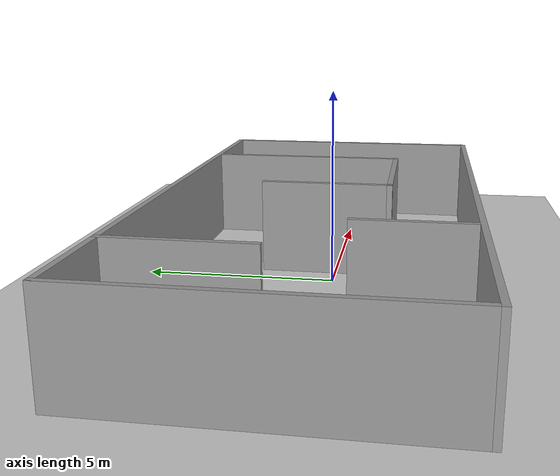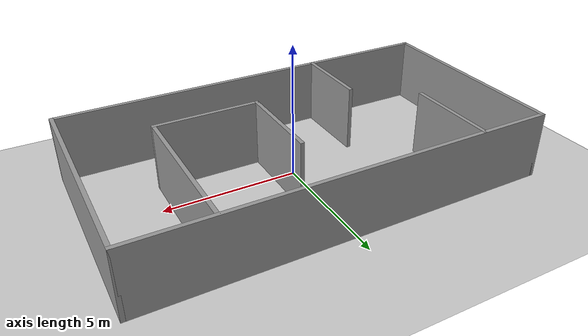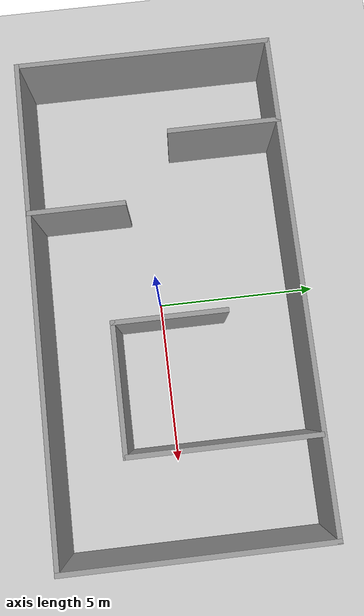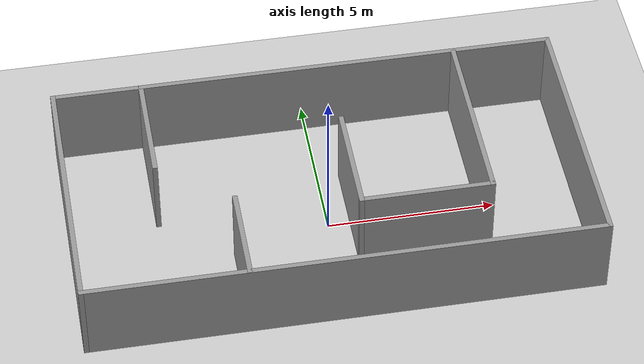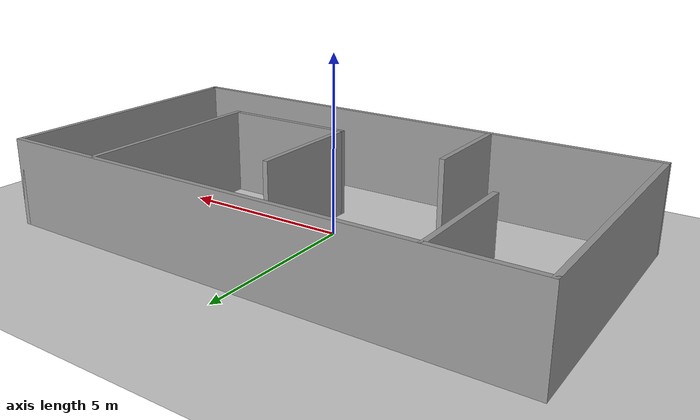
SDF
<sdf version="1.7">
 <world name="default">
  <light name="sun" type="directional">
   <pose>0 0 10 0 -0 0</pose>
   <diffuse>0.8 0.8 0.8 1</diffuse>
   <specular>0.2 0.2 0.2 1</specular>
   <attenuation>
    <range>1000</range>
    <constant>0.9</constant>
    <linear>0.01</linear>
    <quadratic>0.001</quadratic>
   </attenuation>
   <direction>-0.5 0.1 -0.9</direction>
   <spot><inner_angle>0</inner_angle><outer_angle>0</outer_angle><falloff>0</falloff></spot>
  </light>
  <model name="ground_plane">
   <static>1</static>
   <link name="link">
    <collision name="collision">
     <geometry><plane><normal>0 0 1</normal><size>100 100</size></plane></geometry>
     <surface>
      <contact><collide_bitmask>65535</collide_bitmask></contact>
      <friction><ode><mu>100</mu><mu2>50</mu2></ode></friction>
     </surface>
    </collision>
    <visual name="visual">
     <cast_shadows>0</cast_shadows>
     <geometry><plane><normal>0 0 1</normal><size>100 100</size></plane></geometry>
     <material>
      <script><uri>file://media/materials/scripts/gazebo.material</uri><name>Gazebo/Grey</name></script>
     </material>
    </visual>
   </link>
  </model>
  <gravity>0 0 -9.8</gravity>
  <magnetic_field>6e-06 2.3e-05 -4.2e-05</magnetic_field>
  <atmosphere type="adiabatic"/>
  <physics type="ode">
   <max_step_size>0.001</max_step_size>
   <real_time_factor>1</real_time_factor>
   <real_time_update_rate>1000</real_time_update_rate>
  </physics>
  <scene><ambient>0.4 0.4 0.4 1</ambient><background>0.7 0.7 0.7 1</background><shadows>1</shadows></scene>
  <audio><device>default</device></audio>
  <spherical_coordinates>
   <surface_model>EARTH_WGS84</surface_model>
   <latitude_deg>0</latitude_deg>
   <longitude_deg>0</longitude_deg>
   <elevation>0</elevation>
   <heading_deg>0</heading_deg>
  </spherical_coordinates>
  <model name="map3">
   <pose>-0.048254 0.315511 0 0 -0 0</pose>
   <link name="Wall_10">
    <collision name="Wall_10_Collision">
     <geometry><box><size>3.5 0.15 2.5</size></box></geometry>
     <pose>0 0 1.25 0 -0 0</pose>
    </collision>
    <visual name="Wall_10_Visual">
     <pose>0 0 1.25 0 -0 0</pose>
     <geometry><box><size>3.5 0.15 2.5</size></box></geometry>
     <material>
      <script><uri>file://media/materials/scripts/gazebo.material</uri><name>Gazebo/Grey</name></script>
      <ambient>1 1 1 1</ambient>
     </material>
     <meta><layer>0</layer></meta>
    </visual>
    <pose>-4.91243 2.24497 0 0 -0 -1.5708</pose>
   </link>
   <link name="Wall_12">
    <collision name="Wall_12_Collision">
     <geometry><box><size>3 0.15 2.5</size></box></geometry>
     <pose>0 0 1.25 0 -0 0</pose>
    </collision>
    <visual name="Wall_12_Visual">
     <pose>0 0 1.25 0 -0 0</pose>
     <geometry><box><size>3 0.15 2.5</size></box></geometry>
     <material>
      <script><uri>file://media/materials/scripts/gazebo.material</uri><name>Gazebo/Grey</name></script>
      <ambient>1 1 1 1</ambient>
     </material>
     <meta><layer>0</layer></meta>
    </visual>
    <pose>-2.79842 -2.48754 0 0 -0 1.5708</pose>
   </link>
   <link name="Wall_14">
    <collision name="Wall_14_Collision">
     <geometry><box><size>5.75 0.15 2.5</size></box></geometry>
     <pose>0 0 1.25 0 -0 0</pose>
    </collision>
    <visual name="Wall_14_Visual">
     <pose>0 0 1.25 0 -0 0</pose>
     <geometry><box><size>5.75 0.15 2.5</size></box></geometry>
     <material>
      <script><uri>file://media/materials/scripts/gazebo.material</uri><name>Gazebo/Grey</name></script>
      <ambient>1 1 1 1</ambient>
     </material>
     <meta><layer>0</layer></meta>
    </visual>
    <pose>4.62345 1.05913 0 0 -0 -1.5708</pose>
   </link>
   <link name="Wall_15">
    <collision name="Wall_15_Collision">
     <geometry><box><size>4 0.15 2.5</size></box></geometry>
     <pose>0 0 1.25 0 -0 0</pose>
    </collision>
    <visual name="Wall_15_Visual">
     <pose>0 0 1.25 0 -0 0</pose>
     <geometry><box><size>4 0.15 2.5</size></box></geometry>
     <material>
      <script><uri>file://media/materials/scripts/gazebo.material</uri><name>Gazebo/Grey</name></script>
      <ambient>1 1 1 1</ambient>
     </material>
     <meta><layer>0</layer></meta>
    </visual>
    <pose>2.69845 -1.74087 0 0 -0 3.14159</pose>
   </link>
   <link name="Wall_16">
    <collision name="Wall_16_Collision">
     <geometry><box><size>3.5 0.15 2.5</size></box></geometry>
     <pose>0 0 1.25 0 -0 0</pose>
    </collision>
    <visual name="Wall_16_Visual">
     <pose>0 0 1.25 0 -0 0</pose>
     <geometry><box><size>3.5 0.15 2.5</size></box></geometry>
     <material>
      <script><uri>file://media/materials/scripts/gazebo.material</uri><name>Gazebo/Grey</name></script>
      <ambient>1 1 1 1</ambient>
     </material>
     <meta><layer>0</layer></meta>
    </visual>
    <pose>0.773453 -0.065866 0 0 -0 1.5708</pose>
   </link>
   <link name="Wall_5">
    <collision name="Wall_5_Collision">
     <geometry><box><size>8 0.15 2.5</size></box></geometry>
     <pose>0 0 1.25 0 -0 0</pose>
    </collision>
    <visual name="Wall_5_Visual">
     <pose>0 0 1.25 0 -0 0</pose>
     <geometry><box><size>8 0.15 2.5</size></box></geometry>
     <material>
      <script><uri>file://media/materials/scripts/gazebo.material</uri><name>Gazebo/Grey</name></script>
      <ambient>1 1 1 1</ambient>
     </material>
     <meta><layer>0</layer></meta>
    </visual>
    <pose>-7.55 0 0 0 -0 1.5708</pose>
   </link>
   <link name="Wall_6">
    <collision name="Wall_6_Collision">
     <geometry><box><size>15.25 0.15 2.5</size></box></geometry>
     <pose>0 0 1.25 0 -0 0</pose>
    </collision>
    <visual name="Wall_6_Visual">
     <pose>0 0 1.25 0 -0 0</pose>
     <geometry><box><size>15.25 0.15 2.5</size></box></geometry>
     <material>
      <script><uri>file://media/materials/scripts/gazebo.material</uri><name>Gazebo/Grey</name></script>
      <ambient>1 1 1 1</ambient>
     </material>
     <meta><layer>0</layer></meta>
    </visual>
    <pose>0 3.925 0 0 -0 0</pose>
   </link>
   <link name="Wall_7">
    <collision name="Wall_7_Collision">
     <geometry><box><size>8 0.15 2.5</size></box></geometry>
     <pose>0 0 1.25 0 -0 0</pose>
    </collision>
    <visual name="Wall_7_Visual">
     <pose>0 0 1.25 0 -0 0</pose>
     <geometry><box><size>8 0.15 2.5</size></box></geometry>
     <material>
      <script><uri>file://media/materials/scripts/gazebo.material</uri><name>Gazebo/Grey</name></script>
      <ambient>1 1 1 1</ambient>
     </material>
     <meta><layer>0</layer></meta>
    </visual>
    <pose>7.55 0 0 0 -0 -1.5708</pose>
   </link>
   <link name="Wall_8">
    <collision name="Wall_8_Collision">
     <geometry><box><size>15.25 0.15 2.5</size></box></geometry>
     <pose>0 0 1.25 0 -0 0</pose>
    </collision>
    <visual name="Wall_8_Visual">
     <pose>0 0 1.25 0 -0 0</pose>
     <geometry><box><size>15.25 0.15 2.5</size></box></geometry>
     <material>
      <script><uri>file://media/materials/scripts/gazebo.material</uri><name>Gazebo/Grey</name></script>
      <ambient>1 1 1 1</ambient>
     </material>
     <meta><layer>0</layer></meta>
    </visual>
    <pose>0 -3.925 0 0 -0 3.14159</pose>
   </link>
   <static>1</static>
  </model>
 </world>
</sdf>
